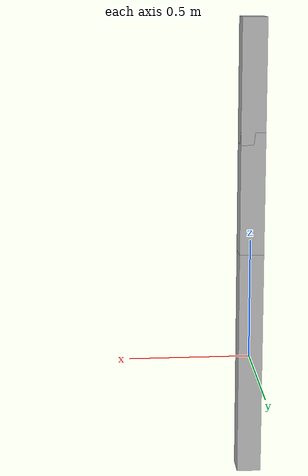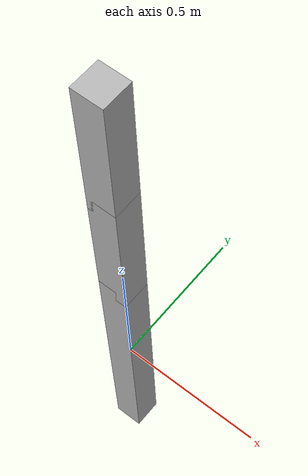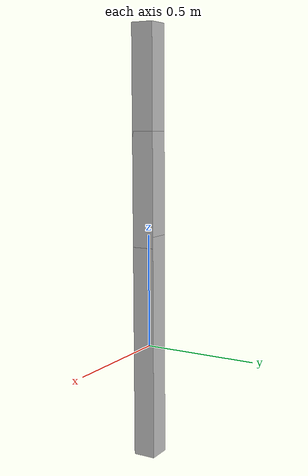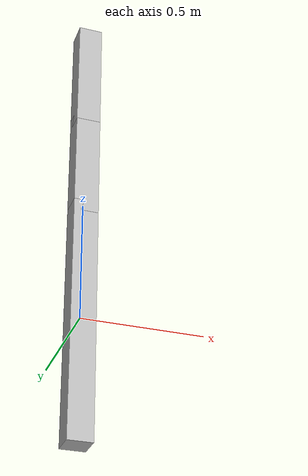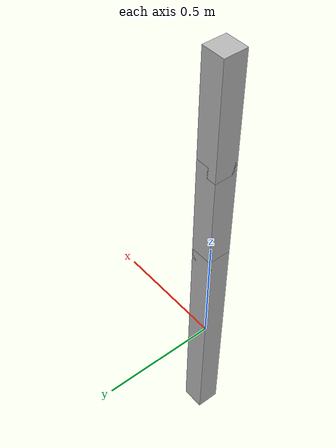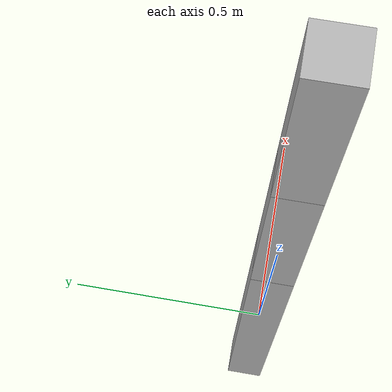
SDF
<?xml version="1.0" ?>
<sdf version="1.6">
  <model name="three_link">

        <static>false</static>

        <link name='lower'>
            <pose>0 0 0 0 0 0</pose>
            <inertial>
                <inertia>
                    <ixx>0.01</ixx>
                    <ixy>0</ixy>
                    <ixz>0</ixz>
                    <iyy>0.01</iyy>
                    <iyz>0</iyz>
                    <izz>0.01</izz>
                </inertia>
                <mass>50</mass>
            </inertial>

            <collision name='collision'>
              <geometry>
                <box>
                  <size>.1 .1 1</size>
                </box>
              </geometry>
            </collision>

            <visual name='visual'>
              <geometry>
                <box>
                  <size>.1 .1 1</size>
                </box>
              </geometry>
            </visual>

        </link>

        <link name='mid'>
            <pose>0 0 .70 0 0 0</pose>

            <collision name='collision'>
              <geometry>
                <box>
                  <size>.1 .1 .5</size>
                </box>
              </geometry>
            </collision>

            <visual name='visual'>
              <geometry>
                <box>
                  <size>.1 .1 .5</size>
                </box>
              </geometry>
            </visual>

        </link>

        <link name='top'>
            <pose>0 0 1.15 0 0 0</pose>

            <collision name='collision'>
              <geometry>
                <box>
                  <size>.1 .1 .5</size>
                </box>
              </geometry>
            </collision>

            <visual name='visual'>
              <geometry>
                <box>
                  <size>.1 .1 .5</size>
                </box>
              </geometry>
            </visual>

        </link>
      <joint name="fixed" type="fixed">
      <pose>0 0 0 0 0 0</pose>
        <child>low</child>
        <parent>world</parent>
      </joint>

      <joint type="revolute" name="low_mid">
        <pose>0 0 -0.225 0 0 0</pose>
        <child>mid</child>
        <parent>lower</parent>
        <axis>
          <xyz>0 0 1</xyz>
        </axis>
      </joint>
      <joint type="revolute" name="mid_top">
        <pose>0 0 -0.225 0 0 0</pose>
        <child>top</child>
        <parent>mid</parent>
        <axis>
          <xyz>0 0 1</xyz>
        </axis>
      </joint>
  </model>
</sdf>
